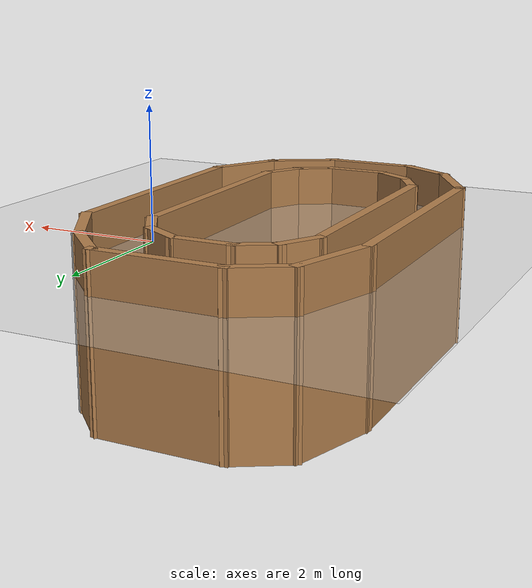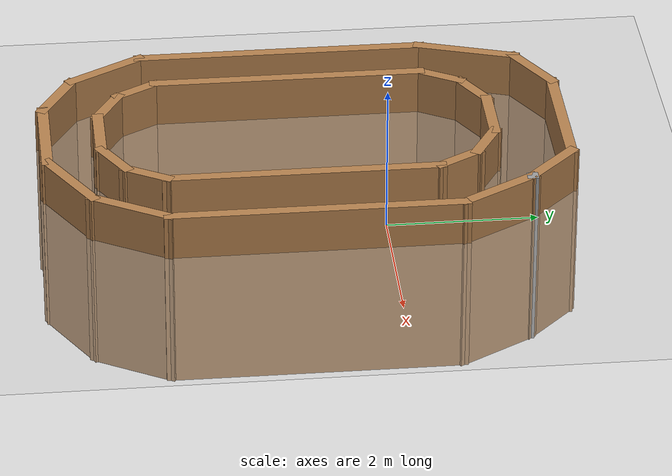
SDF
<sdf version="1.7">
 <world name="default">
  <light name="sun" type="directional">
   <pose>0 0 10 0 -0 0</pose>
   <diffuse>0.8 0.8 0.8 1</diffuse>
   <specular>0.2 0.2 0.2 1</specular>
   <attenuation>
    <range>1000</range>
    <constant>0.9</constant>
    <linear>0.01</linear>
    <quadratic>0.001</quadratic>
   </attenuation>
   <direction>-0.5 0.1 -0.9</direction>
   <spot><inner_angle>0</inner_angle><outer_angle>0</outer_angle><falloff>0</falloff></spot>
  </light>
  <model name="ground_plane">
   <static>1</static>
   <link name="link">
    <collision name="collision">
     <geometry><plane><normal>0 0 1</normal><size>100 100</size></plane></geometry>
     <surface>
      <contact><collide_bitmask>65535</collide_bitmask></contact>
      <friction><ode><mu>100</mu><mu2>50</mu2></ode></friction>
     </surface>
    </collision>
    <visual name="visual">
     <cast_shadows>0</cast_shadows>
     <geometry><plane><normal>0 0 1</normal><size>100 100</size></plane></geometry>
     <material>
      <script><uri>file://media/materials/scripts/gazebo.material</uri><name>Gazebo/Grey</name></script>
     </material>
    </visual>
   </link>
  </model>
  <gravity>0 0 -9.8</gravity>
  <magnetic_field>6e-06 2.3e-05 -4.2e-05</magnetic_field>
  <atmosphere type="adiabatic"/>
  <physics type="ode">
   <max_step_size>0.001</max_step_size>
   <real_time_factor>1</real_time_factor>
   <real_time_update_rate>1000</real_time_update_rate>
  </physics>
  <scene><ambient>0.4 0.4 0.4 1</ambient><background>0.7 0.7 0.7 1</background><shadows>1</shadows></scene>
  <spherical_coordinates>
   <surface_model>EARTH_WGS84</surface_model>
   <latitude_deg>0</latitude_deg>
   <longitude_deg>0</longitude_deg>
   <elevation>0</elevation>
   <heading_deg>0</heading_deg>
  </spherical_coordinates>
  <model name="race">
   <pose>-1.61303 1.20786 -1.90743 0 -0 0</pose>
   <link name="Wall_30">
    <collision name="Wall_30_Collision">
     <geometry><box><size>3.75 0.15 2.5</size></box></geometry>
     <pose>0 0 1.25 0 -0 0</pose>
    </collision>
    <visual name="Wall_30_Visual">
     <pose>0 0 1.25 0 -0 0</pose>
     <geometry><box><size>3.75 0.15 2.5</size></box></geometry>
     <material>
      <script><uri>file://media/materials/scripts/gazebo.material</uri><name>Gazebo/Wood</name></script>
      <ambient>1 1 1 1</ambient>
     </material>
     <meta><layer>0</layer></meta>
    </visual>
    <pose>1.12779 -2.2348 0 0 -0 -1.5708</pose>
   </link>
   <link name="Wall_31">
    <collision name="Wall_31_Collision">
     <geometry><box><size>0.75 0.15 2.5</size></box></geometry>
     <pose>0 0 1.25 0 -0 0</pose>
    </collision>
    <visual name="Wall_31_Visual">
     <pose>0 0 1.25 0 -0 0</pose>
     <geometry><box><size>0.75 0.15 2.5</size></box></geometry>
     <material>
      <script><uri>file://media/materials/scripts/gazebo.material</uri><name>Gazebo/Wood</name></script>
      <ambient>1 1 1 1</ambient>
     </material>
     <meta><layer>0</layer></meta>
    </visual>
    <pose>0.977789 -4.2946 0 0 -0 -2.0944</pose>
   </link>
   <link name="Wall_32">
    <collision name="Wall_32_Collision">
     <geometry><box><size>0.75 0.15 2.5</size></box></geometry>
     <pose>0 0 1.25 0 -0 0</pose>
    </collision>
    <visual name="Wall_32_Visual">
     <pose>0 0 1.25 0 -0 0</pose>
     <geometry><box><size>0.75 0.15 2.5</size></box></geometry>
     <material>
      <script><uri>file://media/materials/scripts/gazebo.material</uri><name>Gazebo/Wood</name></script>
      <ambient>1 1 1 1</ambient>
     </material>
     <meta><layer>0</layer></meta>
    </visual>
    <pose>0.567982 -4.70441 0 0 -0 -2.61799</pose>
   </link>
   <link name="Wall_33">
    <collision name="Wall_33_Collision">
     <geometry><box><size>1 0.15 2.5</size></box></geometry>
     <pose>0 0 1.25 0 -0 0</pose>
    </collision>
    <visual name="Wall_33_Visual">
     <pose>0 0 1.25 0 -0 0</pose>
     <geometry><box><size>1 0.15 2.5</size></box></geometry>
     <material>
      <script><uri>file://media/materials/scripts/gazebo.material</uri><name>Gazebo/Wood</name></script>
      <ambient>1 1 1 1</ambient>
     </material>
     <meta><layer>0</layer></meta>
    </visual>
    <pose>-0.116826 -4.85441 0 0 -0 3.14159</pose>
   </link>
   <link name="Wall_34">
    <collision name="Wall_34_Collision">
     <geometry><box><size>0.75 0.15 2.5</size></box></geometry>
     <pose>0 0 1.25 0 -0 0</pose>
    </collision>
    <visual name="Wall_34_Visual">
     <pose>0 0 1.25 0 -0 0</pose>
     <geometry><box><size>0.75 0.15 2.5</size></box></geometry>
     <material>
      <script><uri>file://media/materials/scripts/gazebo.material</uri><name>Gazebo/Wood</name></script>
      <ambient>1 1 1 1</ambient>
     </material>
     <meta><layer>0</layer></meta>
    </visual>
    <pose>-0.801634 -4.70441 0 0 -0 2.61799</pose>
   </link>
   <link name="Wall_35">
    <collision name="Wall_35_Collision">
     <geometry><box><size>0.75 0.15 2.5</size></box></geometry>
     <pose>0 0 1.25 0 -0 0</pose>
    </collision>
    <visual name="Wall_35_Visual">
     <pose>0 0 1.25 0 -0 0</pose>
     <geometry><box><size>0.75 0.15 2.5</size></box></geometry>
     <material>
      <script><uri>file://media/materials/scripts/gazebo.material</uri><name>Gazebo/Wood</name></script>
      <ambient>1 1 1 1</ambient>
     </material>
     <meta><layer>0</layer></meta>
    </visual>
    <pose>-1.21144 -4.2946 0 0 -0 2.0944</pose>
   </link>
   <link name="Wall_36">
    <collision name="Wall_36_Collision">
     <geometry><box><size>3.75 0.15 2.5</size></box></geometry>
     <pose>0 0 1.25 0 -0 0</pose>
    </collision>
    <visual name="Wall_36_Visual">
     <pose>0 0 1.25 0 -0 0</pose>
     <geometry><box><size>3.75 0.15 2.5</size></box></geometry>
     <material>
      <script><uri>file://media/materials/scripts/gazebo.material</uri><name>Gazebo/Wood</name></script>
      <ambient>1 1 1 1</ambient>
     </material>
     <meta><layer>0</layer></meta>
    </visual>
    <pose>-1.36144 -2.2348 0 0 -0 1.5708</pose>
   </link>
   <link name="Wall_37">
    <collision name="Wall_37_Collision">
     <geometry><box><size>0.75 0.15 2.5</size></box></geometry>
     <pose>0 0 1.25 0 -0 0</pose>
    </collision>
    <visual name="Wall_37_Visual">
     <pose>0 0 1.25 0 -0 0</pose>
     <geometry><box><size>0.75 0.15 2.5</size></box></geometry>
     <material>
      <script><uri>file://media/materials/scripts/gazebo.material</uri><name>Gazebo/Wood</name></script>
      <ambient>1 1 1 1</ambient>
     </material>
     <meta><layer>0</layer></meta>
    </visual>
    <pose>-1.21144 -0.174988 0 0 -0 1.0472</pose>
   </link>
   <link name="Wall_38">
    <collision name="Wall_38_Collision">
     <geometry><box><size>0.75 0.15 2.5</size></box></geometry>
     <pose>0 0 1.25 0 -0 0</pose>
    </collision>
    <visual name="Wall_38_Visual">
     <pose>0 0 1.25 0 -0 0</pose>
     <geometry><box><size>0.75 0.15 2.5</size></box></geometry>
     <material>
      <script><uri>file://media/materials/scripts/gazebo.material</uri><name>Gazebo/Wood</name></script>
      <ambient>1 1 1 1</ambient>
     </material>
     <meta><layer>0</layer></meta>
    </visual>
    <pose>-0.801634 0.234819 0 0 -0 0.523599</pose>
   </link>
   <link name="Wall_39">
    <collision name="Wall_39_Collision">
     <geometry><box><size>1 0.15 2.5</size></box></geometry>
     <pose>0 0 1.25 0 -0 0</pose>
    </collision>
    <visual name="Wall_39_Visual">
     <pose>0 0 1.25 0 -0 0</pose>
     <geometry><box><size>1 0.15 2.5</size></box></geometry>
     <material>
      <script><uri>file://media/materials/scripts/gazebo.material</uri><name>Gazebo/Wood</name></script>
      <ambient>1 1 1 1</ambient>
     </material>
     <meta><layer>0</layer></meta>
    </visual>
    <pose>-0.116826 0.384819 0 0 -0 0</pose>
   </link>
   <link name="Wall_40">
    <collision name="Wall_40_Collision">
     <geometry><box><size>0.75 0.15 2.5</size></box></geometry>
     <pose>0 0 1.25 0 -0 0</pose>
    </collision>
    <visual name="Wall_40_Visual">
     <pose>0 0 1.25 0 -0 0</pose>
     <geometry><box><size>0.75 0.15 2.5</size></box></geometry>
     <material>
      <script><uri>file://media/materials/scripts/gazebo.material</uri><name>Gazebo/Wood</name></script>
      <ambient>1 1 1 1</ambient>
     </material>
     <meta><layer>0</layer></meta>
    </visual>
    <pose>0.567982 0.234819 0 0 -0 -0.523599</pose>
   </link>
   <link name="Wall_41">
    <collision name="Wall_41_Collision">
     <geometry><box><size>0.75 0.15 2.5</size></box></geometry>
     <pose>0 0 1.25 0 -0 0</pose>
    </collision>
    <visual name="Wall_41_Visual">
     <pose>0 0 1.25 0 -0 0</pose>
     <geometry><box><size>0.75 0.15 2.5</size></box></geometry>
     <material>
      <script><uri>file://media/materials/scripts/gazebo.material</uri><name>Gazebo/Wood</name></script>
      <ambient>1 1 1 1</ambient>
     </material>
     <meta><layer>0</layer></meta>
    </visual>
    <pose>0.977789 -0.174988 0 0 -0 -1.0472</pose>
   </link>
   <link name="Wall_43">
    <collision name="Wall_43_Collision">
     <geometry><box><size>4 0.15 2.5</size></box></geometry>
     <pose>0 0 1.25 0 -0 0</pose>
    </collision>
    <visual name="Wall_43_Visual">
     <pose>0 0 1.25 0 -0 0</pose>
     <geometry><box><size>4 0.15 2.5</size></box></geometry>
     <material>
      <script><uri>file://media/materials/scripts/gazebo.material</uri><name>Gazebo/Wood</name></script>
      <ambient>1 1 1 1</ambient>
     </material>
     <meta><layer>0</layer></meta>
    </visual>
    <pose>-2.06937 -2.27755 0 0 -0 -1.5708</pose>
   </link>
   <link name="Wall_44">
    <collision name="Wall_44_Collision">
     <geometry><box><size>1.25 0.15 2.5</size></box></geometry>
     <pose>0 0 1.25 0 -0 0</pose>
    </collision>
    <visual name="Wall_44_Visual">
     <pose>0 0 1.25 0 -0 0</pose>
     <geometry><box><size>1.25 0.15 2.5</size></box></geometry>
     <material>
      <script><uri>file://media/materials/scripts/gazebo.material</uri><name>Gazebo/Wood</name></script>
      <ambient>1 1 1 1</ambient>
     </material>
     <meta><layer>0</layer></meta>
    </visual>
    <pose>-1.79438 -4.67887 0 0 -0 -1.0472</pose>
   </link>
   <link name="Wall_45">
    <collision name="Wall_45_Collision">
     <geometry><box><size>1 0.15 2.5</size></box></geometry>
     <pose>0 0 1.25 0 -0 0</pose>
    </collision>
    <visual name="Wall_45_Visual">
     <pose>0 0 1.25 0 -0 0</pose>
     <geometry><box><size>1 0.15 2.5</size></box></geometry>
     <material>
      <script><uri>file://media/materials/scripts/gazebo.material</uri><name>Gazebo/Wood</name></script>
      <ambient>1 1 1 1</ambient>
     </material>
     <meta><layer>0</layer></meta>
    </visual>
    <pose>-1.15131 -5.36768 0 0 -0 -0.523599</pose>
   </link>
   <link name="Wall_46">
    <collision name="Wall_46_Collision">
     <geometry><box><size>1.5 0.15 2.5</size></box></geometry>
     <pose>0 0 1.25 0 -0 0</pose>
    </collision>
    <visual name="Wall_46_Visual">
     <pose>0 0 1.25 0 -0 0</pose>
     <geometry><box><size>1.5 0.15 2.5</size></box></geometry>
     <material>
      <script><uri>file://media/materials/scripts/gazebo.material</uri><name>Gazebo/Wood</name></script>
      <ambient>1 1 1 1</ambient>
     </material>
     <meta><layer>0</layer></meta>
    </visual>
    <pose>-0.108253 -5.58018 0 0 -0 0</pose>
   </link>
   <link name="Wall_47">
    <collision name="Wall_47_Collision">
     <geometry><box><size>1.25 0.15 2.5</size></box></geometry>
     <pose>0 0 1.25 0 -0 0</pose>
    </collision>
    <visual name="Wall_47_Visual">
     <pose>0 0 1.25 0 -0 0</pose>
     <geometry><box><size>1.25 0.15 2.5</size></box></geometry>
     <material>
      <script><uri>file://media/materials/scripts/gazebo.material</uri><name>Gazebo/Wood</name></script>
      <ambient>1 1 1 1</ambient>
     </material>
     <meta><layer>0</layer></meta>
    </visual>
    <pose>1.04306 -5.30518 0 0 -0 0.523599</pose>
   </link>
   <link name="Wall_48">
    <collision name="Wall_48_Collision">
     <geometry><box><size>1.25 0.15 2.5</size></box></geometry>
     <pose>0 0 1.25 0 -0 0</pose>
    </collision>
    <visual name="Wall_48_Visual">
     <pose>0 0 1.25 0 -0 0</pose>
     <geometry><box><size>1.25 0.15 2.5</size></box></geometry>
     <material>
      <script><uri>file://media/materials/scripts/gazebo.material</uri><name>Gazebo/Wood</name></script>
      <ambient>1 1 1 1</ambient>
     </material>
     <meta><layer>0</layer></meta>
    </visual>
    <pose>1.79438 -4.55387 0 0 -0 1.0472</pose>
   </link>
   <link name="Wall_49">
    <collision name="Wall_49_Collision">
     <geometry><box><size>4 0.15 2.5</size></box></geometry>
     <pose>0 0 1.25 0 -0 0</pose>
    </collision>
    <visual name="Wall_49_Visual">
     <pose>0 0 1.25 0 -0 0</pose>
     <geometry><box><size>4 0.15 2.5</size></box></geometry>
     <material>
      <script><uri>file://media/materials/scripts/gazebo.material</uri><name>Gazebo/Wood</name></script>
      <ambient>1 1 1 1</ambient>
     </material>
     <meta><layer>0</layer></meta>
    </visual>
    <pose>2.06937 -2.15255 0 0 -0 1.5708</pose>
   </link>
   <link name="Wall_50">
    <collision name="Wall_50_Collision">
     <geometry><box><size>1.25 0.15 2.5</size></box></geometry>
     <pose>0 0 1.25 0 -0 0</pose>
    </collision>
    <visual name="Wall_50_Visual">
     <pose>0 0 1.25 0 -0 0</pose>
     <geometry><box><size>1.25 0.15 2.5</size></box></geometry>
     <material>
      <script><uri>file://media/materials/scripts/gazebo.material</uri><name>Gazebo/Wood</name></script>
      <ambient>1 1 1 1</ambient>
     </material>
     <meta><layer>0</layer></meta>
    </visual>
    <pose>1.79438 0.24876 0 0 -0 2.0944</pose>
   </link>
   <link name="Wall_51">
    <collision name="Wall_51_Collision">
     <geometry><box><size>0.15 0.15 2.5</size></box></geometry>
     <pose>0 0 1.25 0 -0 0</pose>
    </collision>
    <visual name="Wall_51_Visual">
     <pose>0 0 1.25 0 -0 0</pose>
     <geometry><box><size>0.15 0.15 2.5</size></box></geometry>
     <material>
      <script><uri>file://media/materials/scripts/gazebo.material</uri><name>Gazebo/Grey</name></script>
      <ambient>1 1 1 1</ambient>
     </material>
     <meta><layer>0</layer></meta>
    </visual>
    <pose>1.51937 0.725074 0 0 -0 0</pose>
   </link>
   <link name="Wall_53">
    <collision name="Wall_53_Collision">
     <geometry><box><size>1 0.15 2.5</size></box></geometry>
     <pose>0 0 1.25 0 -0 0</pose>
    </collision>
    <visual name="Wall_53_Visual">
     <pose>0 0 1.25 0 -0 0</pose>
     <geometry><box><size>1 0.15 2.5</size></box></geometry>
     <material>
      <script><uri>file://media/materials/scripts/gazebo.material</uri><name>Gazebo/Wood</name></script>
      <ambient>1 1 1 1</ambient>
     </material>
     <meta><layer>0</layer></meta>
    </visual>
    <pose>1.21885 1.02559 0 0 -0 2.35619</pose>
   </link>
   <link name="Wall_54">
    <collision name="Wall_54_Collision">
     <geometry><box><size>2 0.15 2.5</size></box></geometry>
     <pose>0 0 1.25 0 -0 0</pose>
    </collision>
    <visual name="Wall_54_Visual">
     <pose>0 0 1.25 0 -0 0</pose>
     <geometry><box><size>2 0.15 2.5</size></box></geometry>
     <material>
      <script><uri>file://media/materials/scripts/gazebo.material</uri><name>Gazebo/Wood</name></script>
      <ambient>1 1 1 1</ambient>
     </material>
     <meta><layer>0</layer></meta>
    </visual>
    <pose>-0.006666 1.32611 0 0 -0 3.14159</pose>
   </link>
   <link name="Wall_55">
    <collision name="Wall_55_Collision">
     <geometry><box><size>1 0.15 2.5</size></box></geometry>
     <pose>0 0 1.25 0 -0 0</pose>
    </collision>
    <visual name="Wall_55_Visual">
     <pose>0 0 1.25 0 -0 0</pose>
     <geometry><box><size>1 0.15 2.5</size></box></geometry>
     <material>
      <script><uri>file://media/materials/scripts/gazebo.material</uri><name>Gazebo/Wood</name></script>
      <ambient>1 1 1 1</ambient>
     </material>
     <meta><layer>0</layer></meta>
    </visual>
    <pose>-1.29973 1.11362 0 0 -0 -2.61799</pose>
   </link>
   <link name="Wall_56">
    <collision name="Wall_56_Collision">
     <geometry><box><size>1.46642 0.15 2.5</size></box></geometry>
     <pose>0 0 1.25 0 -0 0</pose>
    </collision>
    <visual name="Wall_56_Visual">
     <pose>0 0 1.25 0 -0 0</pose>
     <geometry><box><size>1.46642 0.15 2.5</size></box></geometry>
     <material>
      <script><uri>file://media/materials/scripts/gazebo.material</uri><name>Gazebo/Wood</name></script>
      <ambient>1 1 1 1</ambient>
     </material>
     <meta><layer>0</layer></meta>
    </visual>
    <pose>-1.86858 0.274281 0 0 -0 -1.8808</pose>
   </link>
   <static>1</static>
  </model>
 </world>
</sdf>
